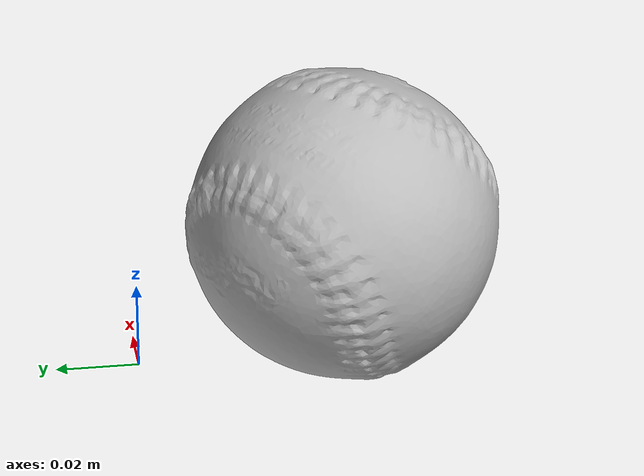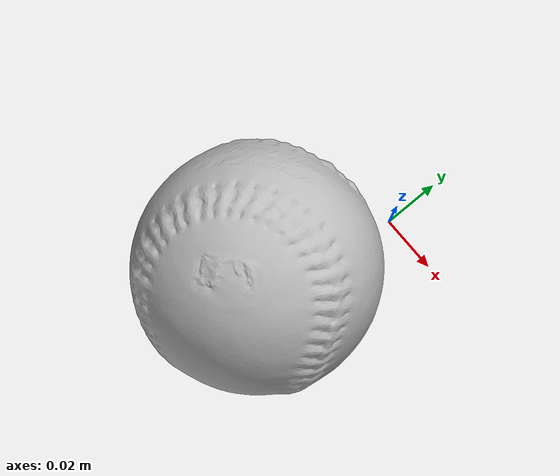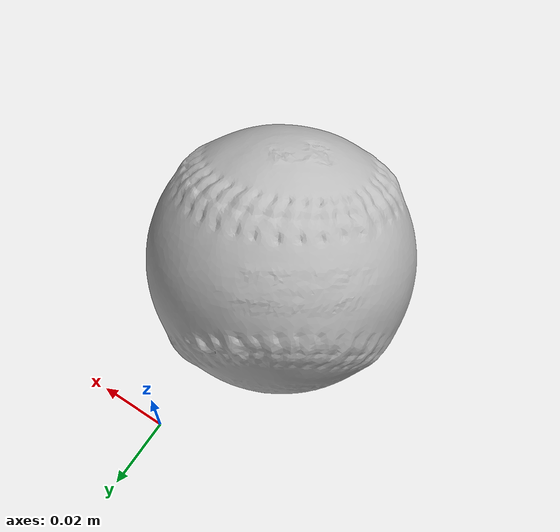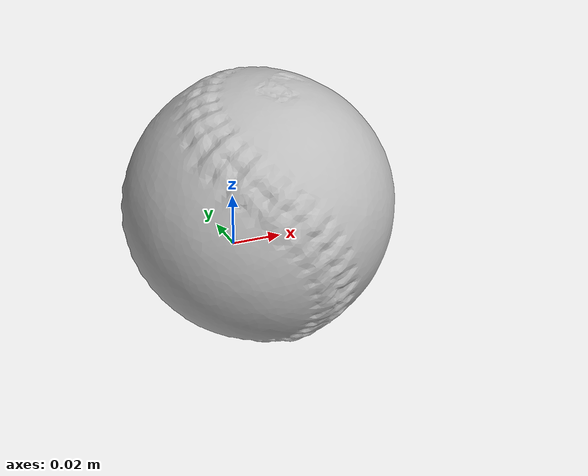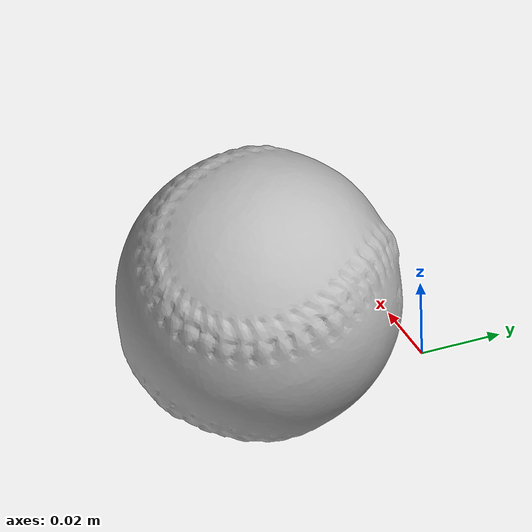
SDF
<?xml version='1.0'?>
<sdf version="1.4">
  <model name="baseball">
    <static>false</static>
    <link name="link">
      <inertial>
        <pose>-0.009947985025210358 -0.04811623557140466 0.03592664752018525 -0.18362772655473816 -0.6241102896770028 -1.49265844247946</pose>
        <mass>0.00020274709259390355</mass>
        <inertia>
          <ixx>1.0826522744418533e-07</ixx>
          <ixy>3.8010669957573476e-24</ixy>
          <ixz>1.2661783573836697e-23</ixz>
          <iyy>1.0766425403851144e-07</iyy>
          <iyz>2.895950978962709e-24</iyz>
          <izz>1.0729927220622786e-07</izz>
        </inertia>
      </inertial>
      <collision name="collision">
        <geometry>
          <mesh>
            <!-- Use a downsampled mesh for collisions -->
            <uri>model://055_baseball/google_16k/055_baseball.obj</uri>
            </mesh>
        </geometry>
        <surface>
          <friction>
            <ode>
              <mu>0.9</mu>
              <mu2>0.9</mu2>
            </ode>
          </friction>
          <contact>
            <ode>
              <kp>1000000000000.0</kp>
              <kd>1</kd>
              <min_depth>0.0001</min_depth>
              <max_vel>0.01</max_vel>
            </ode>
          </contact>
          <bounce>
            <restitution_coefficient>0.1</restitution_coefficient>
            <threshold>1000.0</threshold>
          </bounce>
        </surface>
      </collision>
      <visual name="visual">
        <geometry>
          <mesh>
            <uri>model://055_baseball/google_16k/055_baseball.dae</uri>
            </mesh>
        </geometry>
      </visual>
    </link>
  </model>
</sdf>
